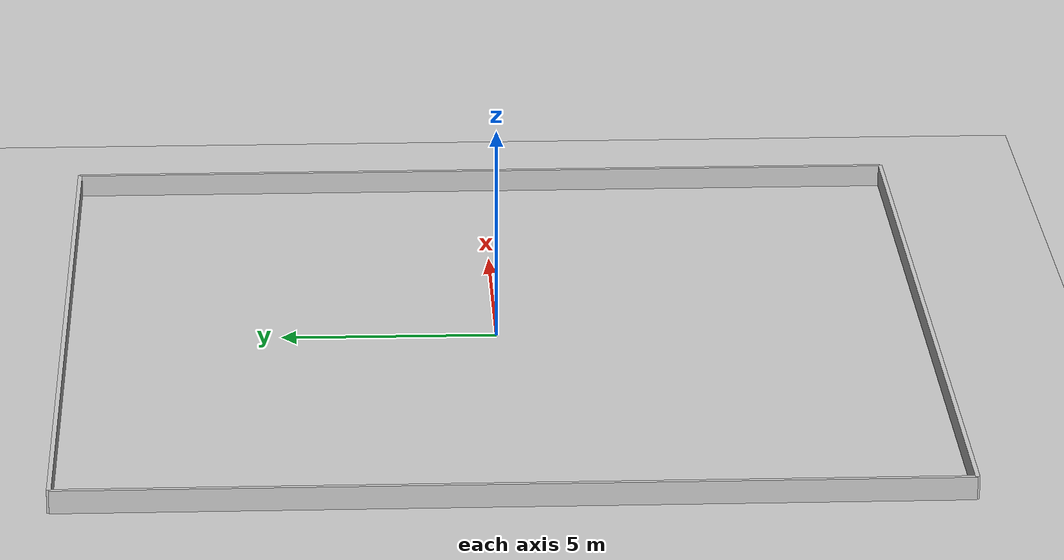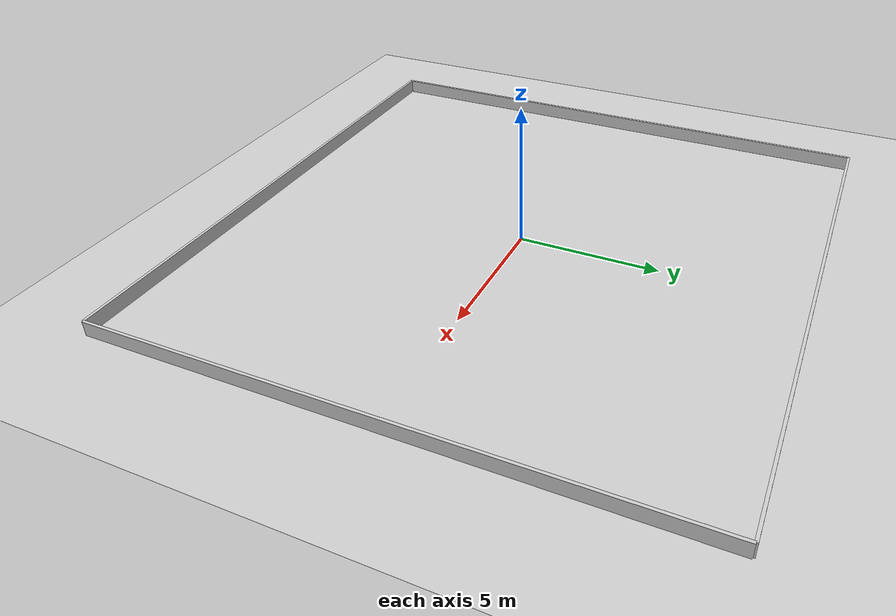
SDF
<sdf version="1.10">
 <world name="scout_in_a_box">
  <plugin filename="gz-sim-physics-system" name="gz::sim::systems::Physics"/>
  <plugin filename="gz-sim-user-commands-system" name="gz::sim::systems::UserCommands"/>
  <plugin filename="gz-sim-scene-broadcaster-system" name="gz::sim::systems::SceneBroadcaster"/>
  <physics name="1ms" type="ignored">
   <max_step_size>0.001</max_step_size>
   <real_time_factor>1.0</real_time_factor>
  </physics>
  <light type="directional" name="sun">
   <pose>0 0 10 0 0 0</pose>
   <diffuse>0.8 0.8 0.8 1</diffuse>
   <specular>0.2 0.2 0.2 1</specular>
   <attenuation>
    <range>1000</range>
    <constant>0.9</constant>
    <linear>0.01</linear>
    <quadratic>0.001</quadratic>
   </attenuation>
   <direction>-0.5 0.1 -0.9</direction>
  </light>
  <model name="box">
   <static>true</static>
   <include merge="true"><uri>install/ros_gz_lehrforst_sim/share/ros_gz_lehrforst_sim/models/box</uri></include>
  </model>
 </world>
</sdf>

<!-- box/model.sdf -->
<sdf version="1.10">

<model name="box">

  <static>true</static>

  <link name="ground_plane">
    <collision name="collision">
    <geometry>
      <plane>
        <normal>0 0 1</normal>
      </plane>
    </geometry>
    </collision>
    <visual name="visual">
      <geometry>
        <plane>
          <normal>0 0 1</normal>
          <size>100 100</size>
        </plane>
      </geometry>
      <material>
        <ambient>0.8 0.8 0.8 1</ambient>
        <diffuse>0.8 0.8 0.8 1</diffuse>
        <specular>0.8 0.8 0.8 1</specular>
      </material>
    </visual>
  </link>

  <link name='north_wall'>
    <pose>10 0 0 0 0 0</pose>
    <visual name='visual'>
      <geometry>
        <box>
          <size>0.1 20.0 1.0</size>
        </box>
      </geometry>
      <material>
        <ambient>0.8 0.8 0.8 1</ambient>
        <diffuse>0.8 0.8 0.8 1</diffuse>
        <specular>0.8 0.8 0.8 1</specular>
      </material>
    </visual>
    <collision name='collision'>
      <geometry>
        <box>
          <size>0.1 20.0 1.0</size>
        </box>
      </geometry>
    </collision>
  </link>

  <link name='east_wall'>
    <pose>0 10 0 0 0 0</pose>
    <visual name='visual'>
      <geometry>
        <box>
          <size>20.0 0.1 1.0</size>
        </box>
      </geometry>
      <material>
        <ambient>0.8 0.8 0.8 1</ambient>
        <diffuse>0.8 0.8 0.8 1</diffuse>
        <specular>0.8 0.8 0.8 1</specular>
      </material>
    </visual>
    <collision name='collision'>
      <geometry>
        <box>
          <size>20.0 0.1 1.0</size>
        </box>
      </geometry>
    </collision>
  </link>

  <link name='south_wall'>
    <pose>-10 0 0 0 0 0</pose>
    <visual name='visual'>
      <geometry>
        <box>
          <size>0.1 20.0 1.0</size>
        </box>
      </geometry>
      <material>
        <ambient>0.8 0.8 0.8 1</ambient>
        <diffuse>0.8 0.8 0.8 1</diffuse>
        <specular>0.8 0.8 0.8 1</specular>
      </material>
    </visual>
    <collision name='collision'>
      <geometry>
        <box>
          <size>0.1 20.0 1.0</size>
        </box>
      </geometry>
    </collision>
  </link>

  <link name='west_wall'>
    <pose>0 -10 0 0 0 0</pose>
    <visual name='visual'>
      <geometry>
        <box>
          <size>20.0 0.1 1.0</size>
        </box>
      </geometry>
      <material>
        <ambient>0.8 0.8 0.8 1</ambient>
        <diffuse>0.8 0.8 0.8 1</diffuse>
        <specular>0.8 0.8 0.8 1</specular>
      </material>
    </visual>
    <collision name='collision'>
      <geometry>
        <box>
          <size>20.0 0.1 1.0</size>
        </box>
      </geometry>
    </collision>
  </link>

</model>

</sdf>
